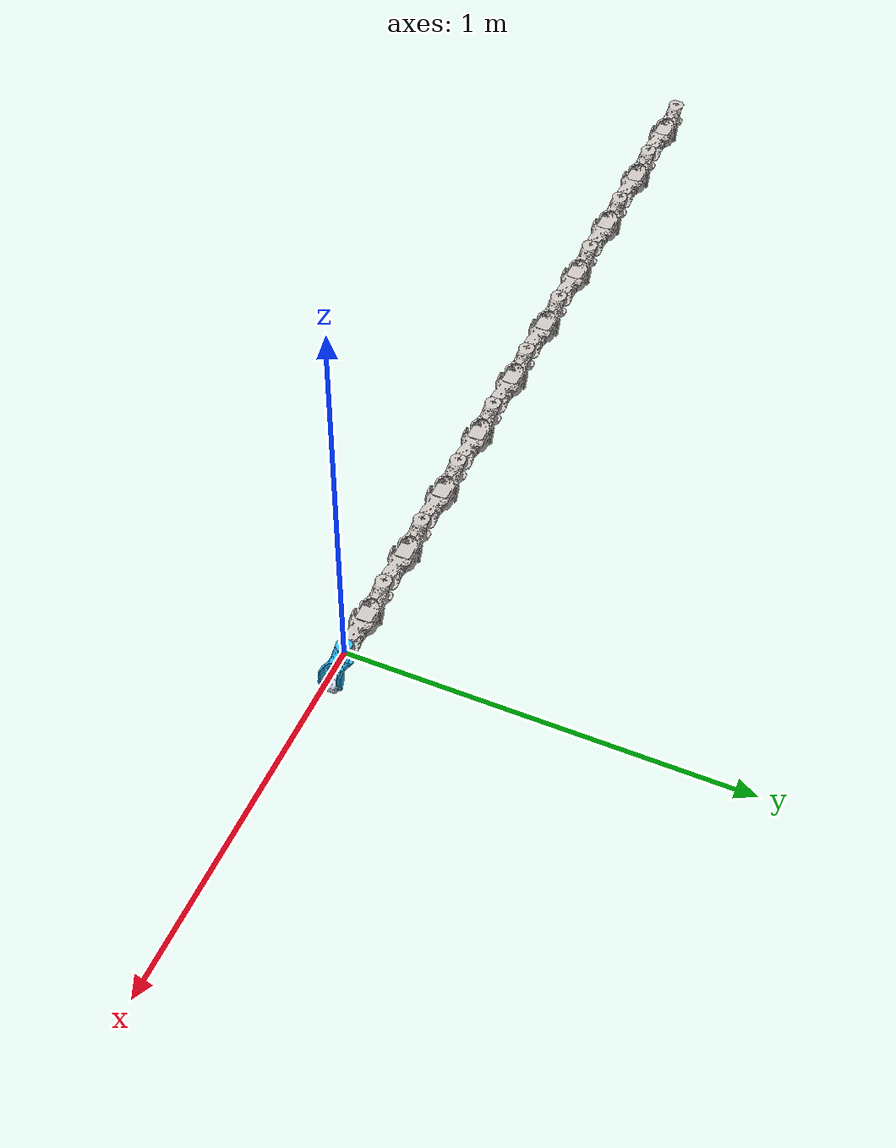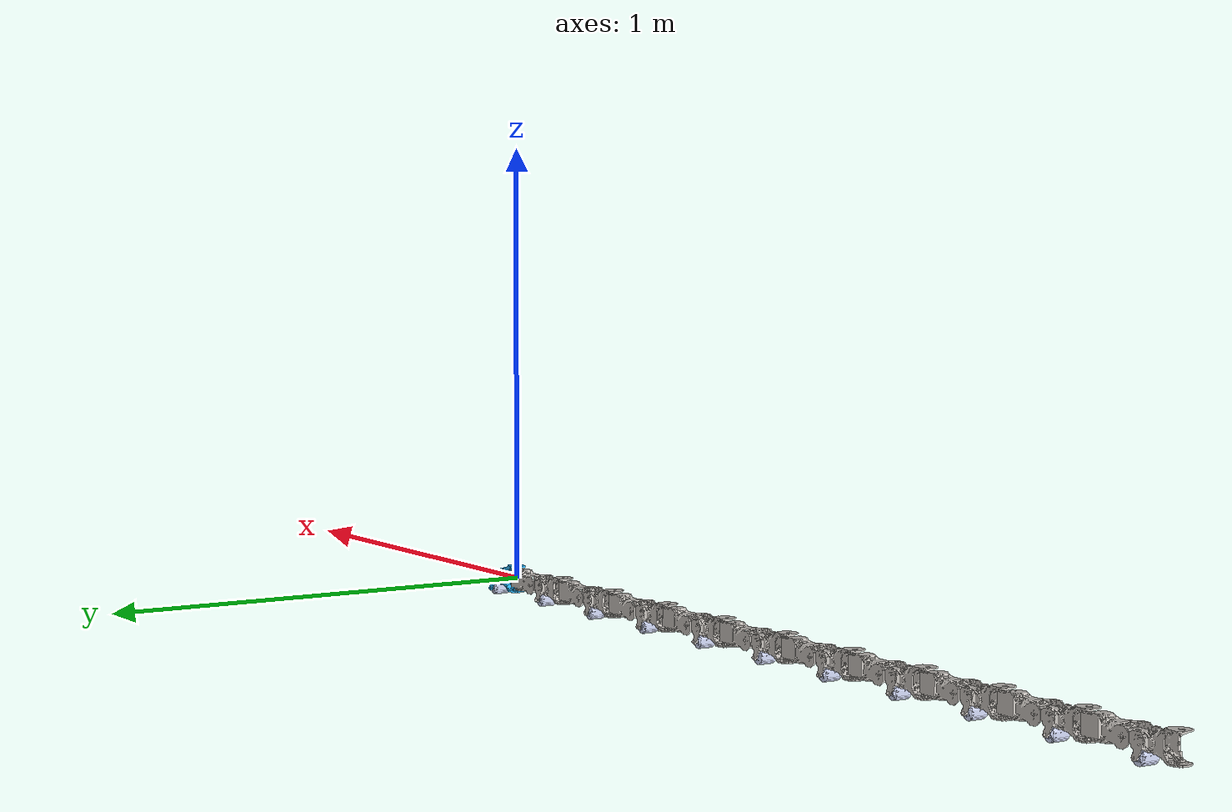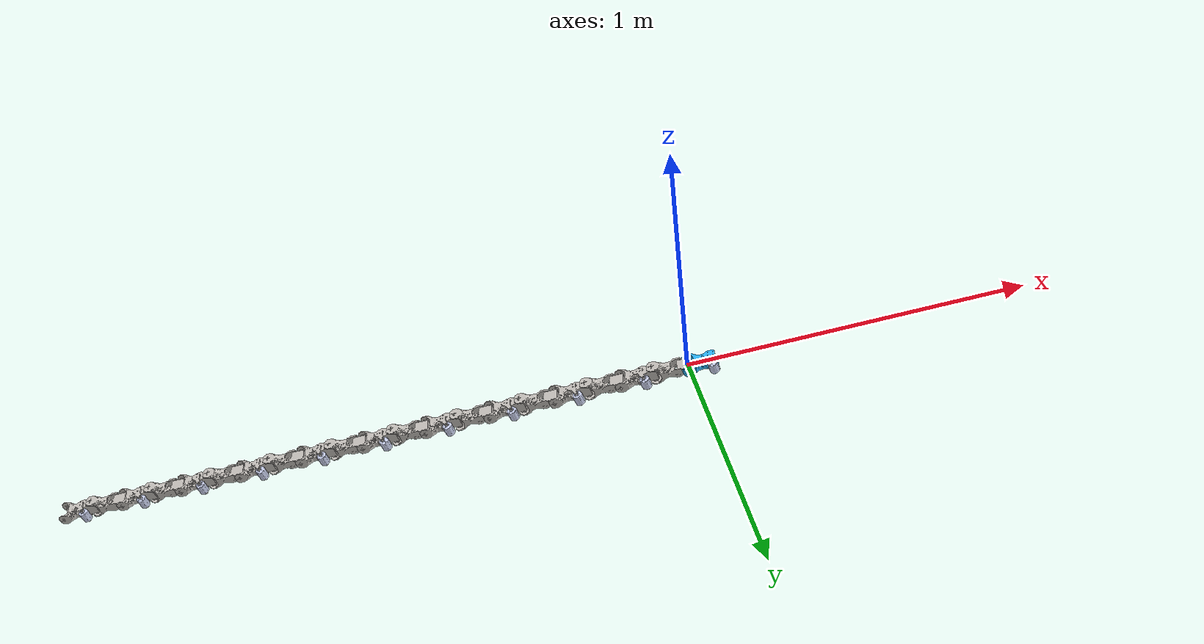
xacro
<?xml version="1.0"?>
<robot name="snake_simulate" xmlns:xacro="http://www.ros.org/wiki/xacro">

    <xacro:property name="PI" value="3.1415926535897931" />

    <xacro:include filename="$(find snake_simulate)/snake_with_wheel_xacro/snake_with_wheel_head.xacro" />
    <xacro:include filename="$(find snake_simulate)/snake_with_wheel_xacro/snake_with_wheel_orthogonal_joint.xacro" />

    <snake_with_wheel_head ID1="1" ID2="2" ID3="2" />
    <snake_with_wheel_orthogonal_joint ID1="3" ID2="4" ID3="3" />
    <snake_with_wheel_orthogonal_joint ID1="5" ID2="6" ID3="4" />
    <snake_with_wheel_orthogonal_joint ID1="7" ID2="8" ID3="5" />
    <snake_with_wheel_orthogonal_joint ID1="9" ID2="10" ID3="6" />
    <snake_with_wheel_orthogonal_joint ID1="11" ID2="12" ID3="7" />
    <snake_with_wheel_orthogonal_joint ID1="13" ID2="14" ID3="8" />
    <snake_with_wheel_orthogonal_joint ID1="15" ID2="16" ID3="9" />
    <snake_with_wheel_orthogonal_joint ID1="17" ID2="18" ID3="10" />
    <snake_with_wheel_orthogonal_joint ID1="19" ID2="20" ID3="11" />

    <gazebo>
        <plugin filename="libgazebo_ros_control.so" name="ros_control">
            <robotNamespace>/snake_simulate</robotNamespace>
            <robotSimType>gazebo_ros_control/DefaultRobotHWSim</robotSimType>
            <legacyModeNS>true</legacyModeNS>
        </plugin>
    </gazebo>

</robot>

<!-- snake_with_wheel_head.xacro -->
<robot name="snake_simulate" xmlns:xacro="http://www.ros.org/wiki/xacro">
    <xacro:macro name="snake_with_wheel_head" params="ID1:=1 ID2:=2 ID3:=2">
        <link name="dummy_link">
        </link>
        <link
            name="base_link">
            <inertial>
                <origin
                    xyz="0.046756 -3.0974E-05 -0.0042756"
                    rpy="0 0 0" />
                <mass
                    value="0.15651" />
                <inertia
                    ixx="6.9082E-05"
                    ixy="-8.9347E-08"
                    ixz="1.2498E-06"
                    iyy="0.00011157"
                    iyz="-1.7714E-09"
                    izz="9.5319E-05" />
            </inertial>
            <visual>
                <origin
                    xyz="0 0 0"
                    rpy="0 0 0" />
                <geometry>
                    <mesh
                        filename="package://snake_simulate/meshes/snake_with_wheel_base_link.STL" />
                </geometry>
                <material
                    name="">
                    <color
                        rgba="0.18431 0.73333 1 1" />
                </material>
            </visual>
            <collision>
                <origin
                    xyz="0 0 0"
                    rpy="0 0 0" />
                <geometry>
                    <mesh
                        filename="package://snake_simulate/meshes/snake_with_wheel_base_link.STL" />
                </geometry>
            </collision>
        </link>
        <joint name="dummy_joint" type="fixed">
            <parent link="dummy_link"/>
            <child link="base_link"/>
        </joint>
        <link
            name="Wheel_1">
            <inertial>
                <origin
                    xyz="-2.7756E-17 1.0582E-16 3.4694E-18"
                    rpy="0 0 0" />
                <mass
                    value="0.019471" />
                <inertia
                    ixx="4.07E-06"
                    ixy="-8.4946E-21"
                    ixz="9.3271E-24"
                    iyy="2.7774E-06"
                    iyz="1.1729E-11"
                    izz="4.07E-06" />
            </inertial>
            <visual>
                <origin
                    xyz="0 0 0"
                    rpy="0 0 0" />
                <geometry>
                    <mesh
                        filename="package://snake_simulate/meshes/snake_with_wheel_Wheel_1.STL" />
                </geometry>
                <material
                    name="">
                    <color
                        rgba="0.79608 0.82353 0.93725 1" />
                </material>
            </visual>
            <collision>
                <origin
                    xyz="0 0 0"
                    rpy="0 0 0" />
                <geometry>
                    <mesh
                        filename="package://snake_simulate/meshes/snake_with_wheel_Wheel_1.STL" />
                </geometry>
            </collision>
        </link>
        <joint
            name="Wheel_joint_1"
            type="continuous">
            <origin
                xyz="0.079 0 -0.03"
                rpy="0 0 0" />
            <parent
                link="base_link" />
            <child
                link="Wheel_1" />
            <axis
                xyz="0 1 0" />
            <limit
                lower="0"
                upper="0"
                effort="0"
                velocity="100" />
        </joint>
        <link
            name="Link_${ID1}">
            <inertial>
                <origin
                    xyz="-0.028507 -0.00015484 -3.6726E-05"
                    rpy="0 0 0" />
                <mass
                    value="0.3569" />
                <inertia
                    ixx="0.00010484"
                    ixy="-4.4703E-09"
                    ixz="1.6891E-07"
                    iyy="0.0001602"
                    iyz="2.9787E-10"
                    izz="0.00014581" />
            </inertial>
            <visual>
                <origin
                xyz="0 0 0"
                rpy="0 0 0" />
                <geometry>
                    <mesh
                        filename="package://snake_simulate/meshes/snake_with_wheel_Link_1.STL" />
                </geometry>
                <material
                    name="">
                    <color
                        rgba="0.77647 0.75686 0.73725 1" />
                </material>
            </visual>
            <collision>
                <origin
                    xyz="0 0 0"
                    rpy="0 0 0" />
                <geometry>
                    <mesh
                        filename="package://snake_simulate/meshes/snake_with_wheel_Link_1.STL" />
                </geometry>
            </collision>
        </link>
        <joint
            name="Joint_${ID1}"
            type="revolute">
            <origin
                xyz="0 0 0"
                rpy="0 0 0" />
            <parent
                link="base_link" />
            <child
                link="Link_${ID1}" />
            <axis
                xyz="0 0 -1" />
            <limit
                lower="-1.5"
                upper="1.5"
                effort="1000"
                velocity="50" />
        </joint>
        <link
            name="Link_${ID2}">
            <inertial>
                <origin
                    xyz="-0.029095 -0.0018076 -1.6348E-05"
                    rpy="0 0 0" />
                <mass
                    value="0.40492" />
                <inertia
                    ixx="0.00011158"
                    ixy="1.2455E-06"
                    ixz="1.6891E-07"
                    iyy="0.00016276"
                    iyz="2.9842E-10"
                    izz="0.00015263" />
            </inertial>
            <visual>
                <origin
                    xyz="0 0 0"
                    rpy="0 0 0" />
                <geometry>
                    <mesh
                        filename="package://snake_simulate/meshes/snake_with_wheel_Link_2.STL" />
                </geometry>
                <material
                    name="">
                    <color
                        rgba="0.77647 0.75686 0.73725 1" />
                </material>
            </visual>
            <collision>
                <origin
                    xyz="0 0 0"
                    rpy="0 0 0" />
                <geometry>
                    <mesh
                        filename="package://snake_simulate/meshes/snake_with_wheel_Link_2.STL" />
                </geometry>
            </collision>
        </link>
        <joint
            name="Joint_${ID2}"
            type="revolute">
            <origin
                xyz="-0.1059 -0.00015556 0"
                rpy="1.5708 0 0" />
            <parent
                link="Link_${ID1}" />
            <child
                link="Link_${ID2}" />
            <axis
                xyz="0 0 -1" />
            <limit
                lower="-1.5"
                upper="1.5"
                effort="1000"
                velocity="50" />
        </joint>
        <link
            name="Wheel_${ID3}">
            <inertial>
                <origin
                    xyz="-5.5511E-17 3.1225E-17 1.9082E-17"
                    rpy="0 0 0" />
                <mass
                    value="0.019471" />
                <inertia
                    ixx="4.07E-06"
                    ixy="-8.6034E-21"
                    ixz="2.935E-23"
                    iyy="2.7774E-06"
                    iyz="1.1729E-11"
                    izz="4.07E-06" />
            </inertial>
            <visual>
                <origin
                    xyz="0 0 0"
                    rpy="0 0 0" />
                <geometry>
                    <mesh
                        filename="package://snake_simulate/meshes/snake_with_wheel_Wheel_1.STL" />
                </geometry>
                <material
                    name="">
                    <color
                        rgba="0.79608 0.82353 0.93725 1" />
                </material>
            </visual>
            <collision>
                <origin
                    xyz="0 0 0"
                    rpy="0 0 0" />
                <geometry>
                    <mesh
                    filename="package://snake_simulate/meshes/snake_with_wheel_Wheel_1.STL" />
                </geometry>
            </collision>
        </link>
        <joint
            name="Wheel_joint_${ID3}"
            type="continuous">
            <origin
                xyz="-0.0269 -0.030156 0"
                rpy="-1.5708 0 0" />
            <parent
                link="Link_${ID2}" />
            <child
                link="Wheel_${ID3}" />
            <axis
                xyz="0 1 0" />
            <limit
                lower="0"
                upper="0"
                effort="0"
                velocity="100" />
        </joint>
        <gazebo reference="base_link">
            <material>Gazebo/Blue</material>
            <implicitSpringDamper>1</implicitSpringDamper>
            <kp>1000000.0</kp>
            <kd>1.0</kd>
            <mu1>0.5</mu1>
            <mu2>0.5</mu2>
            <minDepth>0.001</minDepth>
        </gazebo>
        <gazebo reference="Link_${ID1}">
            <material>Gazebo/Orange</material>
            <implicitSpringDamper>1</implicitSpringDamper>
            <kp>1000000.0</kp>
            <kd>1.0</kd>
            <mu1>0.5</mu1>
            <mu2>0.5</mu2>
            <minDepth>0.001</minDepth>
        </gazebo>
        <transmission name="Tran_${ID1}">
            <type>transmission_interface/SimpleTransmission</type>
            <joint name="Joint_${ID1}">
                <hardwareInterface>hardware_interface/EffortJointInterface</hardwareInterface>
            </joint>
            <actuator name="Motor_${ID1}">
                <mechanicalReduction>1</mechanicalReduction>
                <hardwareInterface>hardware_interface/EffortJointInterface</hardwareInterface>
            </actuator>
        </transmission>
        <gazebo reference="Link_${ID2}">
            <material>Gazebo/Blue</material>
            <implicitSpringDamper>1</implicitSpringDamper>
            <kp>1000000.0</kp>
            <kd>1.0</kd>
            <mu1>0.5</mu1>
            <mu2>0.5</mu2>
            <minDepth>0.001</minDepth>
        </gazebo>
        <transmission name="Tran_${ID2}">
            <type>transmission_interface/SimpleTransmission</type>
            <joint name="Joint_${ID2}">
                <hardwareInterface>hardware_interface/EffortJointInterface</hardwareInterface>
            </joint>
            <actuator name="Motor_${ID2}">
                <mechanicalReduction>1</mechanicalReduction>
                <hardwareInterface>hardware_interface/EffortJointInterface</hardwareInterface>
            </actuator>
        </transmission>
        <gazebo reference="Wheel_1">
            <material>Gazebo/Blue</material>
            <implicitSpringDamper>1</implicitSpringDamper>
            <kp>1000000.0</kp>
            <kd>1.0</kd>
            <mu1>0.5</mu1>
            <mu2>0.5</mu2>
            <minDepth>0.001</minDepth>
        </gazebo>
        <transmission name="Wheel_Tran_1">
            <type>transmission_interface/SimpleTransmission</type>
            <joint name="Wheel_joint_1">
                <hardwareInterface>hardware_interface/EffortJointInterface</hardwareInterface>
            </joint>
            <actuator name="Wheel_Motor_1">
                <mechanicalReduction>1</mechanicalReduction>
                <hardwareInterface>hardware_interface/EffortJointInterface</hardwareInterface>
            </actuator>
        </transmission>
        <gazebo reference="Wheel_${ID3}">
            <material>Gazebo/Blue</material>
            <implicitSpringDamper>1</implicitSpringDamper>
            <kp>1000000.0</kp>
            <kd>1.0</kd>
            <mu1>0.5</mu1>
            <mu2>0.5</mu2>
            <minDepth>0.001</minDepth>
        </gazebo>
        <transmission name="Wheel_Tran_${ID3}">
            <type>transmission_interface/SimpleTransmission</type>
            <joint name="Wheel_joint_${ID3}">
                <hardwareInterface>hardware_interface/EffortJointInterface</hardwareInterface>
            </joint>
            <actuator name="Wheel_Motor_${ID3}">
                <mechanicalReduction>1</mechanicalReduction>
                <hardwareInterface>hardware_interface/EffortJointInterface</hardwareInterface>
            </actuator>
        </transmission>
    </xacro:macro>
</robot>

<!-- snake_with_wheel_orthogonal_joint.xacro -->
<robot name="snake_simulate" xmlns:xacro="http://www.ros.org/wiki/xacro">
    <xacro:macro name="snake_with_wheel_orthogonal_joint" params="ID1 ID2 ID3">
        <link
            name="Link_${ID1}">
            <inertial>
                <origin
                    xyz="-0.028507 -0.00015484 -3.6726E-05"
                    rpy="0 0 0" />
                <mass
                    value="0.3569" />
                <inertia
                    ixx="0.00010484"
                    ixy="-4.4703E-09"
                    ixz="1.6891E-07"
                    iyy="0.0001602"
                    iyz="2.9787E-10"
                    izz="0.00014581" />
            </inertial>
            <visual>
                <origin
                    xyz="0 0 0"
                    rpy="0 0 0" />
                <geometry>
                    <mesh
                        filename="package://snake_simulate/meshes/snake_with_wheel_Link_1.STL" />
                </geometry>
                <material
                    name="">
                    <color
                        rgba="0.77647 0.75686 0.73725 1" />
                </material>
            </visual>
            <collision>
                <origin
                    xyz="0 0 0"
                    rpy="0 0 0" />
                <geometry>
                    <mesh
                        filename="package://snake_simulate/meshes/snake_with_wheel_Link_1.STL" />
                </geometry>
            </collision>
        </link>
        <joint
            name="Joint_${ID1}"
            type="revolute">
            <origin
                xyz="-0.1059 -0.00015556 0"
                rpy="-1.5708 0 0" />
            <parent
                link="Link_${ID1-1}" />
            <child
                link="Link_${ID1}" />
            <axis
                xyz="0 0 -1" />
            <limit
                lower="-1.5"
                upper="1.5"
                effort="1000"
                velocity="50" />
        </joint>
        <link
            name="Link_${ID2}">
            <inertial>
                <origin
                    xyz="-0.029095 -0.0018076 -1.6348E-05"
                    rpy="0 0 0" />
                <mass
                    value="0.40492" />
                <inertia
                    ixx="0.00011158"
                    ixy="1.2455E-06"
                    ixz="1.6891E-07"
                    iyy="0.00016276"
                    iyz="2.9842E-10"
                    izz="0.00015263" />
            </inertial>
            <visual>
                <origin
                    xyz="0 0 0"
                    rpy="0 0 0" />
                <geometry>
                    <mesh
                        filename="package://snake_simulate/meshes/snake_with_wheel_Link_2.STL" />
                </geometry>
                <material
                    name="">
                    <color
                        rgba="0.77647 0.75686 0.73725 1" />
                </material>
            </visual>
            <collision>
                <origin
                    xyz="0 0 0"
                    rpy="0 0 0" />
                <geometry>
                    <mesh
                        filename="package://snake_simulate/meshes/snake_with_wheel_Link_2.STL" />
                </geometry>
            </collision>
        </link>
        <joint
            name="Joint_${ID2}"
            type="revolute">
            <origin
                xyz="-0.1059 -0.00015556 0"
                rpy="1.5708 0 0" />
            <parent
                link="Link_${ID1}" />
            <child
                link="Link_${ID2}" />
            <axis
                xyz="0 0 -1" />
            <limit
                lower="-1.5"
                upper="1.5"
                effort="1000"
                velocity="50" />
        </joint>
        <link
            name="Wheel_${ID3}">
            <inertial>
                <origin
                    xyz="0 -5.8981E-17 -1.7347E-17"
                    rpy="0 0 0" />
                <mass
                    value="0.019471" />
                <inertia
                    ixx="4.07E-06"
                    ixy="-8.4805E-21"
                    ixz="-2.8992E-23"
                    iyy="2.7774E-06"
                    iyz="1.1729E-11"
                    izz="4.07E-06" />
            </inertial>
            <visual>
                <origin
                    xyz="0 0 0"
                    rpy="0 0 0" />
                <geometry>
                    <mesh
                        filename="package://snake_simulate/meshes/snake_with_wheel_Wheel_1.STL" />
                </geometry>
                <material
                    name="">
                    <color
                        rgba="0.79608 0.82353 0.93725 1" />
                </material>
            </visual>
            <collision>
                <origin
                    xyz="0 0 0"
                    rpy="0 0 0" />
                <geometry>
                    <mesh
                        filename="package://snake_simulate/meshes/snake_with_wheel_Wheel_1.STL" />
                </geometry>
            </collision>
        </link>
        <joint
            name="Wheel_joint_${ID3}"
            type="continuous">
            <origin
                xyz="-0.0269 -0.030156 0"
                rpy="-1.5708 0 0" />
            <parent
                link="Link_${ID2}" />
            <child
                link="Wheel_${ID3}" />
            <axis
                xyz="0 1 0" />
            <limit
                lower="0"
                upper="0"
                effort="0"
                velocity="100" />
        </joint>
        <gazebo reference="Link_${ID1}">
            <material>Gazebo/Orange</material>
            <implicitSpringDamper>1</implicitSpringDamper>
            <kp>1000000.0</kp>
            <kd>1.0</kd>
            <mu1>0.5</mu1>
            <mu2>0.5</mu2>
            <minDepth>0.001</minDepth>
        </gazebo>
        <transmission name="Tran_${ID1}">
            <type>transmission_interface/SimpleTransmission</type>
            <joint name="Joint_${ID1}">
                <hardwareInterface>hardware_interface/EffortJointInterface</hardwareInterface>
            </joint>
            <actuator name="Motor_${ID1}">
                <mechanicalReduction>1</mechanicalReduction>
                <hardwareInterface>hardware_interface/EffortJointInterface</hardwareInterface>
            </actuator>
        </transmission>
        <gazebo reference="Link_${ID2}">
            <material>Gazebo/Blue</material>
            <implicitSpringDamper>1</implicitSpringDamper>
            <kp>1000000.0</kp>
            <kd>1.0</kd>
            <mu1>0.5</mu1>
            <mu2>0.5</mu2>
            <minDepth>0.001</minDepth>
        </gazebo>
        <transmission name="Tran_${ID2}">
            <type>transmission_interface/SimpleTransmission</type>
            <joint name="Joint_${ID2}">
                <hardwareInterface>hardware_interface/EffortJointInterface</hardwareInterface>
            </joint>
            <actuator name="Motor_${ID2}">
                <mechanicalReduction>1</mechanicalReduction>
                <hardwareInterface>hardware_interface/EffortJointInterface</hardwareInterface>
            </actuator>
        </transmission>
        <gazebo reference="Wheel_${ID3}">
            <material>Gazebo/Blue</material>
            <implicitSpringDamper>1</implicitSpringDamper>
            <kp>1000000.0</kp>
            <kd>1.0</kd>
            <mu1>0.5</mu1>
            <mu2>0.5</mu2>
            <minDepth>0.001</minDepth>
        </gazebo>
        <transmission name="Wheel_Tran_${ID3}">
            <type>transmission_interface/SimpleTransmission</type>
            <joint name="Wheel_joint_${ID3}">
                <hardwareInterface>hardware_interface/EffortJointInterface</hardwareInterface>
            </joint>
            <actuator name="Wheel_Motor_${ID3}">
                <mechanicalReduction>1</mechanicalReduction>
                <hardwareInterface>hardware_interface/EffortJointInterface</hardwareInterface>
            </actuator>
        </transmission>
    </xacro:macro>
</robot>
